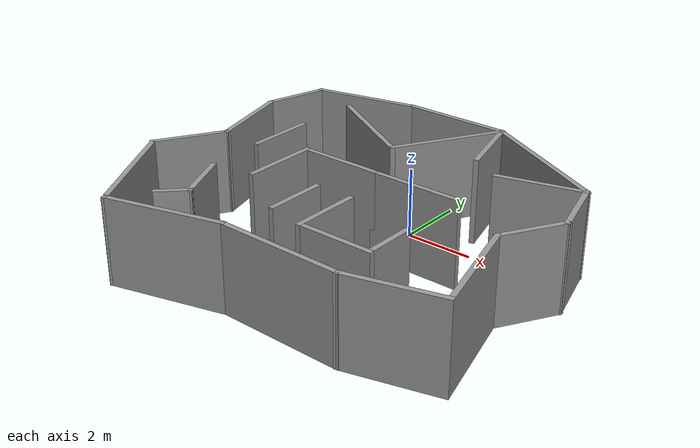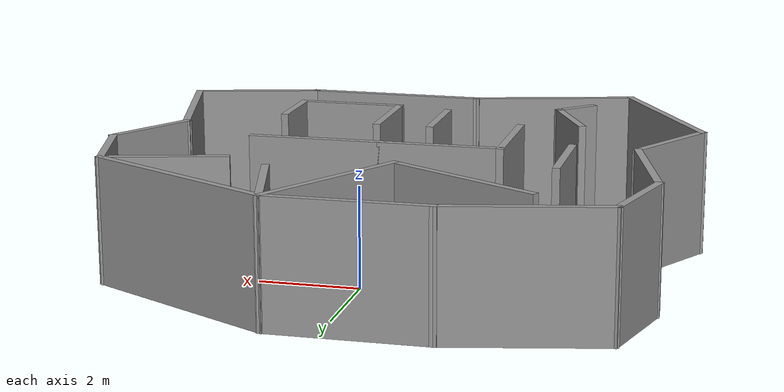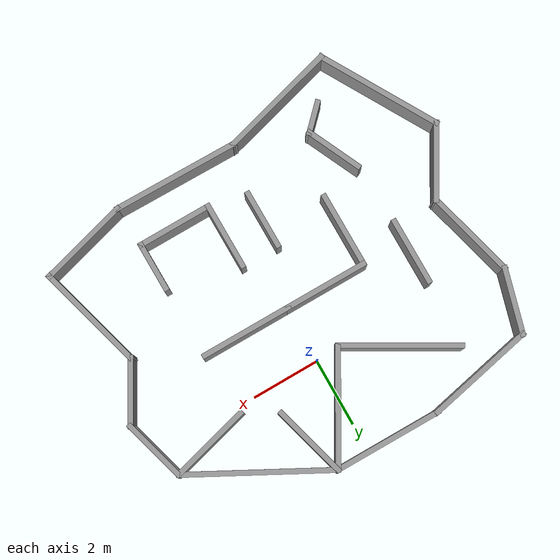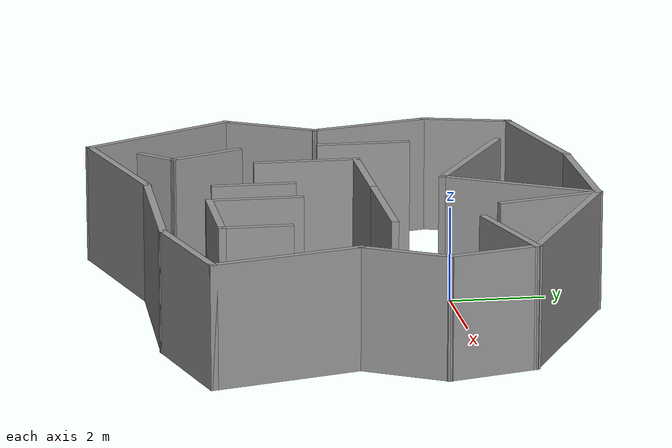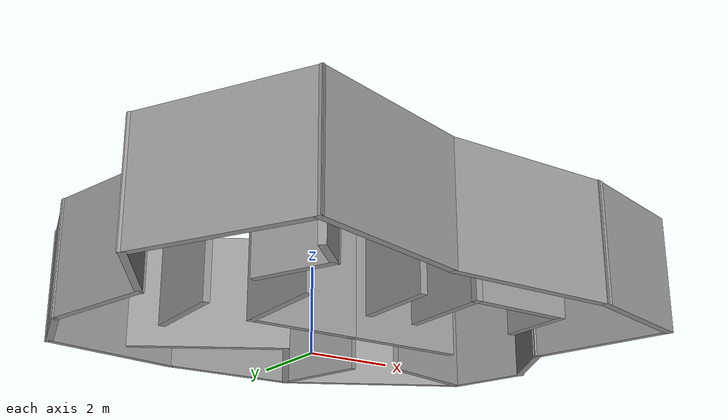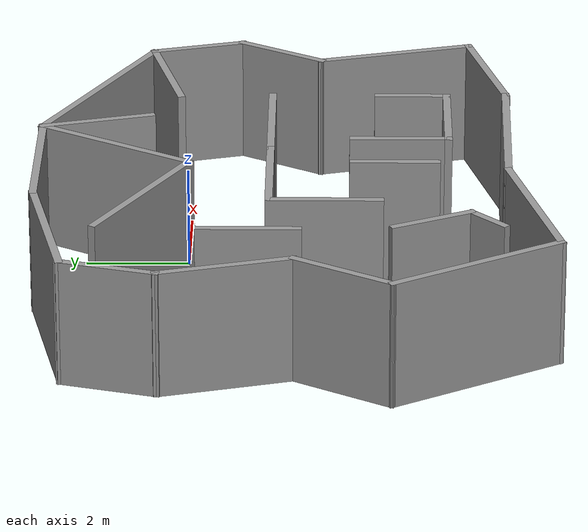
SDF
<?xml version='1.0'?>
<sdf version='1.7'>
  <model name='Test'>
    <pose>-0.352034 -2.08508 0 0 -0 0</pose>
    <link name='Wall_0'>
      <collision name='Wall_0_Collision'>
        <geometry>
          <box>
            <size>2.25 0.15 2.5</size>
          </box>
        </geometry>
        <pose>0 0 1.25 0 -0 0</pose>
      </collision>
      <visual name='Wall_0_Visual'>
        <pose>0 0 1.25 0 -0 0</pose>
        <geometry>
          <box>
            <size>2.25 0.15 2.5</size>
          </box>
        </geometry>
        <material>
          <script>
            <uri>file://media/materials/scripts/gazebo.material</uri>
            <name>Gazebo/Grey</name>
          </script>
          <ambient>1 1 1 1</ambient>
        </material>
        <meta>
          <layer>0</layer>
        </meta>
      </visual>
      <pose>-2.00797 -0.564918 0 0 -0 1.5708</pose>
    </link>
    <link name='Wall_1'>
      <collision name='Wall_1_Collision'>
        <geometry>
          <box>
            <size>2.5 0.15 2.5</size>
          </box>
        </geometry>
        <pose>0 0 1.25 0 -0 0</pose>
      </collision>
      <visual name='Wall_1_Visual'>
        <pose>0 0 1.25 0 -0 0</pose>
        <geometry>
          <box>
            <size>2.5 0.15 2.5</size>
          </box>
        </geometry>
        <material>
          <script>
            <uri>file://media/materials/scripts/gazebo.material</uri>
            <name>Gazebo/Grey</name>
          </script>
          <ambient>1 1 1 1</ambient>
        </material>
        <meta>
          <layer>0</layer>
        </meta>
      </visual>
      <pose>-0.832966 0.485082 0 0 -0 0</pose>
    </link>
    <link name='Wall_11'>
      <collision name='Wall_11_Collision'>
        <geometry>
          <box>
            <size>1.74995 0.15 2.5</size>
          </box>
        </geometry>
        <pose>0 0 1.25 0 -0 0</pose>
      </collision>
      <visual name='Wall_11_Visual'>
        <pose>0 0 1.25 0 -0 0</pose>
        <geometry>
          <box>
            <size>1.74995 0.15 2.5</size>
          </box>
        </geometry>
        <material>
          <script>
            <uri>file://media/materials/scripts/gazebo.material</uri>
            <name>Gazebo/Grey</name>
          </script>
          <ambient>1 1 1 1</ambient>
        </material>
        <meta>
          <layer>0</layer>
        </meta>
      </visual>
      <pose>-2.86793 -2.59903 0 0 -0 -1.13177</pose>
    </link>
    <link name='Wall_14'>
      <collision name='Wall_14_Collision'>
        <geometry>
          <box>
            <size>3.5 0.15 2.5</size>
          </box>
        </geometry>
        <pose>0 0 1.25 0 -0 0</pose>
      </collision>
      <visual name='Wall_14_Visual'>
        <pose>0 0 1.25 0 -0 0</pose>
        <geometry>
          <box>
            <size>3.5 0.15 2.5</size>
          </box>
        </geometry>
        <material>
          <script>
            <uri>file://media/materials/scripts/gazebo.material</uri>
            <name>Gazebo/Grey</name>
          </script>
          <ambient>1 1 1 1</ambient>
        </material>
        <meta>
          <layer>0</layer>
        </meta>
      </visual>
      <pose>-1.75737 2.88758 0 0 -0 -0.523599</pose>
    </link>
    <link name='Wall_15'>
      <collision name='Wall_15_Collision'>
        <geometry>
          <box>
            <size>3.5 0.15 2.5</size>
          </box>
        </geometry>
        <pose>0 0 1.25 0 -0 0</pose>
      </collision>
      <visual name='Wall_15_Visual'>
        <pose>0 0 1.25 0 -0 0</pose>
        <geometry>
          <box>
            <size>3.5 0.15 2.5</size>
          </box>
        </geometry>
        <material>
          <script>
            <uri>file://media/materials/scripts/gazebo.material</uri>
            <name>Gazebo/Grey</name>
          </script>
          <ambient>1 1 1 1</ambient>
        </material>
        <meta>
          <layer>0</layer>
        </meta>
      </visual>
      <pose>0.530719 3.50068 0 0 -0 1.0472</pose>
    </link>
    <link name='Wall_16'>
      <collision name='Wall_16_Collision'>
        <geometry>
          <box>
            <size>3.25 0.15 2.5</size>
          </box>
        </geometry>
        <pose>0 0 1.25 0 -0 0</pose>
      </collision>
      <visual name='Wall_16_Visual'>
        <pose>0 0 1.25 0 -0 0</pose>
        <geometry>
          <box>
            <size>3.25 0.15 2.5</size>
          </box>
        </geometry>
        <material>
          <script>
            <uri>file://media/materials/scripts/gazebo.material</uri>
            <name>Gazebo/Grey</name>
          </script>
          <ambient>1 1 1 1</ambient>
        </material>
        <meta>
          <layer>0</layer>
        </meta>
      </visual>
      <pose>-0.181781 4.95127 0 0 -0 3.14159</pose>
    </link>
    <link name='Wall_19'>
      <collision name='Wall_19_Collision'>
        <geometry>
          <box>
            <size>2.75 0.15 2.5</size>
          </box>
        </geometry>
        <pose>0 0 1.25 0 -0 0</pose>
      </collision>
      <visual name='Wall_19_Visual'>
        <pose>0 0 1.25 0 -0 0</pose>
        <geometry>
          <box>
            <size>2.75 0.15 2.5</size>
          </box>
        </geometry>
        <material>
          <script>
            <uri>file://media/materials/scripts/gazebo.material</uri>
            <name>Gazebo/Grey</name>
          </script>
          <ambient>1 1 1 1</ambient>
        </material>
        <meta>
          <layer>0</layer>
        </meta>
      </visual>
      <pose>4.2513 -3.80096 0 0 -0 0.261799</pose>
    </link>
    <link name='Wall_2'>
      <collision name='Wall_2_Collision'>
        <geometry>
          <box>
            <size>2.75 0.15 2.5</size>
          </box>
        </geometry>
        <pose>0 0 1.25 0 -0 0</pose>
      </collision>
      <visual name='Wall_2_Visual'>
        <pose>0 0 1.25 0 -0 0</pose>
        <geometry>
          <box>
            <size>2.75 0.15 2.5</size>
          </box>
        </geometry>
        <material>
          <script>
            <uri>file://media/materials/scripts/gazebo.material</uri>
            <name>Gazebo/Grey</name>
          </script>
          <ambient>1 1 1 1</ambient>
        </material>
        <meta>
          <layer>0</layer>
        </meta>
      </visual>
      <pose>1.64203 0.485082 0 0 -0 0</pose>
    </link>
    <link name='Wall_20'>
      <collision name='Wall_20_Collision'>
        <geometry>
          <box>
            <size>3.25 0.15 2.5</size>
          </box>
        </geometry>
        <pose>0 0 1.25 0 -0 0</pose>
      </collision>
      <visual name='Wall_20_Visual'>
        <pose>0 0 1.25 0 -0 0</pose>
        <geometry>
          <box>
            <size>3.25 0.15 2.5</size>
          </box>
        </geometry>
        <material>
          <script>
            <uri>file://media/materials/scripts/gazebo.material</uri>
            <name>Gazebo/Grey</name>
          </script>
          <ambient>1 1 1 1</ambient>
        </material>
        <meta>
          <layer>0</layer>
        </meta>
      </visual>
      <pose>5.10583 -1.96731 0 0 -0 1.8326</pose>
    </link>
    <link name='Wall_21'>
      <collision name='Wall_21_Collision'>
        <geometry>
          <box>
            <size>2 0.15 2.5</size>
          </box>
        </geometry>
        <pose>0 0 1.25 0 -0 0</pose>
      </collision>
      <visual name='Wall_21_Visual'>
        <pose>0 0 1.25 0 -0 0</pose>
        <geometry>
          <box>
            <size>2 0.15 2.5</size>
          </box>
        </geometry>
        <material>
          <script>
            <uri>file://media/materials/scripts/gazebo.material</uri>
            <name>Gazebo/Grey</name>
          </script>
          <ambient>1 1 1 1</ambient>
        </material>
        <meta>
          <layer>0</layer>
        </meta>
      </visual>
      <pose>5.16716 0.330949 0 0 -0 1.0472</pose>
    </link>
    <link name='Wall_22'>
      <collision name='Wall_22_Collision'>
        <geometry>
          <box>
            <size>2 0.15 2.5</size>
          </box>
        </geometry>
        <pose>0 0 1.25 0 -0 0</pose>
      </collision>
      <visual name='Wall_22_Visual'>
        <pose>0 0 1.25 0 -0 0</pose>
        <geometry>
          <box>
            <size>2 0.15 2.5</size>
          </box>
        </geometry>
        <material>
          <script>
            <uri>file://media/materials/scripts/gazebo.material</uri>
            <name>Gazebo/Grey</name>
          </script>
          <ambient>1 1 1 1</ambient>
        </material>
        <meta>
          <layer>0</layer>
        </meta>
      </visual>
      <pose>5.39025 2.0255 0 0 -0 1.8326</pose>
    </link>
    <link name='Wall_23'>
      <collision name='Wall_23_Collision'>
        <geometry>
          <box>
            <size>2.5 0.15 2.5</size>
          </box>
        </geometry>
        <pose>0 0 1.25 0 -0 0</pose>
      </collision>
      <visual name='Wall_23_Visual'>
        <pose>0 0 1.25 0 -0 0</pose>
        <geometry>
          <box>
            <size>2.5 0.15 2.5</size>
          </box>
        </geometry>
        <material>
          <script>
            <uri>file://media/materials/scripts/gazebo.material</uri>
            <name>Gazebo/Grey</name>
          </script>
          <ambient>1 1 1 1</ambient>
        </material>
        <meta>
          <layer>0</layer>
        </meta>
      </visual>
      <pose>4.01588 2.61487 0 0 -0 -2.87979</pose>
    </link>
    <link name='Wall_25'>
      <collision name='Wall_25_Collision'>
        <geometry>
          <box>
            <size>2.31423 0.15 2.5</size>
          </box>
        </geometry>
        <pose>0 0 1.25 0 -0 0</pose>
      </collision>
      <visual name='Wall_25_Visual'>
        <pose>0 0 1.25 0 -0 0</pose>
        <geometry>
          <box>
            <size>2.31423 0.15 2.5</size>
          </box>
        </geometry>
        <material>
          <script>
            <uri>file://media/materials/scripts/gazebo.material</uri>
            <name>Gazebo/Grey</name>
          </script>
          <ambient>1 1 1 1</ambient>
        </material>
        <meta>
          <layer>0</layer>
        </meta>
      </visual>
      <pose>1.64826 3.90601 0 0 -0 1.83256</pose>
    </link>
    <link name='Wall_27'>
      <collision name='Wall_27_Collision'>
        <geometry>
          <box>
            <size>1 0.15 2.5</size>
          </box>
        </geometry>
        <pose>0 0 1.25 0 -0 0</pose>
      </collision>
      <visual name='Wall_27_Visual'>
        <pose>0 0 1.25 0 -0 0</pose>
        <geometry>
          <box>
            <size>1 0.15 2.5</size>
          </box>
        </geometry>
        <material>
          <script>
            <uri>file://media/materials/scripts/gazebo.material</uri>
            <name>Gazebo/Grey</name>
          </script>
          <ambient>1 1 1 1</ambient>
        </material>
        <meta>
          <layer>0</layer>
        </meta>
      </visual>
      <pose>-2.82841 -3.62366 0 0 -0 -2.35619</pose>
    </link>
    <link name='Wall_29'>
      <collision name='Wall_29_Collision'>
        <geometry>
          <box>
            <size>3.5 0.15 2.5</size>
          </box>
        </geometry>
        <pose>0 0 1.25 0 -0 0</pose>
      </collision>
      <visual name='Wall_29_Visual'>
        <pose>0 0 1.25 0 -0 0</pose>
        <geometry>
          <box>
            <size>3.5 0.15 2.5</size>
          </box>
        </geometry>
        <material>
          <script>
            <uri>file://media/materials/scripts/gazebo.material</uri>
            <name>Gazebo/Grey</name>
          </script>
          <ambient>1 1 1 1</ambient>
        </material>
        <meta>
          <layer>0</layer>
        </meta>
      </visual>
      <pose>-2.21174 -4.51774 0 0 -0 -2.87979</pose>
    </link>
    <link name='Wall_30'>
      <collision name='Wall_30_Collision'>
        <geometry>
          <box>
            <size>3.75 0.15 2.5</size>
          </box>
        </geometry>
        <pose>0 0 1.25 0 -0 0</pose>
      </collision>
      <visual name='Wall_30_Visual'>
        <pose>0 0 1.25 0 -0 0</pose>
        <geometry>
          <box>
            <size>3.75 0.15 2.5</size>
          </box>
        </geometry>
        <material>
          <script>
            <uri>file://media/materials/scripts/gazebo.material</uri>
            <name>Gazebo/Grey</name>
          </script>
          <ambient>1 1 1 1</ambient>
        </material>
        <meta>
          <layer>0</layer>
        </meta>
      </visual>
      <pose>-4.72966 -3.39242 0 0 -0 2.0944</pose>
    </link>
    <link name='Wall_31'>
      <collision name='Wall_31_Collision'>
        <geometry>
          <box>
            <size>2.25 0.15 2.5</size>
          </box>
        </geometry>
        <pose>0 0 1.25 0 -0 0</pose>
      </collision>
      <visual name='Wall_31_Visual'>
        <pose>0 0 1.25 0 -0 0</pose>
        <geometry>
          <box>
            <size>2.25 0.15 2.5</size>
          </box>
        </geometry>
        <material>
          <script>
            <uri>file://media/materials/scripts/gazebo.material</uri>
            <name>Gazebo/Grey</name>
          </script>
          <ambient>1 1 1 1</ambient>
        </material>
        <meta>
          <layer>0</layer>
        </meta>
      </visual>
      <pose>-5.10466 -0.924249 0 0 -0 1.0472</pose>
    </link>
    <link name='Wall_32'>
      <collision name='Wall_32_Collision'>
        <geometry>
          <box>
            <size>2.75 0.15 2.5</size>
          </box>
        </geometry>
        <pose>0 0 1.25 0 -0 0</pose>
      </collision>
      <visual name='Wall_32_Visual'>
        <pose>0 0 1.25 0 -0 0</pose>
        <geometry>
          <box>
            <size>2.75 0.15 2.5</size>
          </box>
        </geometry>
        <material>
          <script>
            <uri>file://media/materials/scripts/gazebo.material</uri>
            <name>Gazebo/Grey</name>
          </script>
          <ambient>1 1 1 1</ambient>
        </material>
        <meta>
          <layer>0</layer>
        </meta>
      </visual>
      <pose>-4.91613 1.24078 0 0 -0 1.8326</pose>
    </link>
    <link name='Wall_33'>
      <collision name='Wall_33_Collision'>
        <geometry>
          <box>
            <size>2 0.15 2.5</size>
          </box>
        </geometry>
        <pose>0 0 1.25 0 -0 0</pose>
      </collision>
      <visual name='Wall_33_Visual'>
        <pose>0 0 1.25 0 -0 0</pose>
        <geometry>
          <box>
            <size>2 0.15 2.5</size>
          </box>
        </geometry>
        <material>
          <script>
            <uri>file://media/materials/scripts/gazebo.material</uri>
            <name>Gazebo/Grey</name>
          </script>
          <ambient>1 1 1 1</ambient>
        </material>
        <meta>
          <layer>0</layer>
        </meta>
      </visual>
      <pose>-5.01318 3.38997 0 0 -0 1.309</pose>
    </link>
    <link name='Wall_34'>
      <collision name='Wall_34_Collision'>
        <geometry>
          <box>
            <size>3.26444 0.15 2.5</size>
          </box>
        </geometry>
        <pose>0 0 1.25 0 -0 0</pose>
      </collision>
      <visual name='Wall_34_Visual'>
        <pose>0 0 1.25 0 -0 0</pose>
        <geometry>
          <box>
            <size>3.26444 0.15 2.5</size>
          </box>
        </geometry>
        <material>
          <script>
            <uri>file://media/materials/scripts/gazebo.material</uri>
            <name>Gazebo/Grey</name>
          </script>
          <ambient>1 1 1 1</ambient>
        </material>
        <meta>
          <layer>0</layer>
        </meta>
      </visual>
      <pose>-3.25278 4.61736 0 0 -0 0.216105</pose>
    </link>
    <link name='Wall_36'>
      <collision name='Wall_36_Collision'>
        <geometry>
          <box>
            <size>2 0.15 2.5</size>
          </box>
        </geometry>
        <pose>0 0 1.25 0 -0 0</pose>
      </collision>
      <visual name='Wall_36_Visual'>
        <pose>0 0 1.25 0 -0 0</pose>
        <geometry>
          <box>
            <size>2 0.15 2.5</size>
          </box>
        </geometry>
        <material>
          <script>
            <uri>file://media/materials/scripts/gazebo.material</uri>
            <name>Gazebo/Grey</name>
          </script>
          <ambient>1 1 1 1</ambient>
        </material>
        <meta>
          <layer>0</layer>
        </meta>
      </visual>
      <pose>-3.30703 0.84282 0 0 -0 -1.5708</pose>
    </link>
    <link name='Wall_38'>
      <collision name='Wall_38_Collision'>
        <geometry>
          <box>
            <size>4.444 0.15 2.5</size>
          </box>
        </geometry>
        <pose>0 0 1.25 0 -0 0</pose>
      </collision>
      <visual name='Wall_38_Visual'>
        <pose>0 0 1.25 0 -0 0</pose>
        <geometry>
          <box>
            <size>4.444 0.15 2.5</size>
          </box>
        </geometry>
        <material>
          <script>
            <uri>file://media/materials/scripts/gazebo.material</uri>
            <name>Gazebo/Grey</name>
          </script>
          <ambient>1 1 1 1</ambient>
        </material>
        <meta>
          <layer>0</layer>
        </meta>
      </visual>
      <pose>3.25953 3.93513 0 0 -0 -0.493015</pose>
    </link>
    <link name='Wall_4'>
      <collision name='Wall_4_Collision'>
        <geometry>
          <box>
            <size>1.5 0.15 2.5</size>
          </box>
        </geometry>
        <pose>0 0 1.25 0 -0 0</pose>
      </collision>
      <visual name='Wall_4_Visual'>
        <pose>0 0 1.25 0 -0 0</pose>
        <geometry>
          <box>
            <size>1.5 0.15 2.5</size>
          </box>
        </geometry>
        <material>
          <script>
            <uri>file://media/materials/scripts/gazebo.material</uri>
            <name>Gazebo/Grey</name>
          </script>
          <ambient>1 1 1 1</ambient>
        </material>
        <meta>
          <layer>0</layer>
        </meta>
      </visual>
      <pose>2.94203 -2.28992 0 0 -0 -1.5708</pose>
    </link>
    <link name='Wall_42'>
      <collision name='Wall_42_Collision'>
        <geometry>
          <box>
            <size>3.7398 0.15 2.5</size>
          </box>
        </geometry>
        <pose>0 0 1.25 0 -0 0</pose>
      </collision>
      <visual name='Wall_42_Visual'>
        <pose>0 0 1.25 0 -0 0</pose>
        <geometry>
          <box>
            <size>3.7398 0.15 2.5</size>
          </box>
        </geometry>
        <material>
          <script>
            <uri>file://media/materials/scripts/gazebo.material</uri>
            <name>Gazebo/Grey</name>
          </script>
          <ambient>1 1 1 1</ambient>
        </material>
        <meta>
          <layer>0</layer>
        </meta>
      </visual>
      <pose>1.20089 -4.11082 0 0 -0 -0.01482</pose>
    </link>
    <link name='Wall_5'>
      <collision name='Wall_5_Collision'>
        <geometry>
          <box>
            <size>2.25 0.15 2.5</size>
          </box>
        </geometry>
        <pose>0 0 1.25 0 -0 0</pose>
      </collision>
      <visual name='Wall_5_Visual'>
        <pose>0 0 1.25 0 -0 0</pose>
        <geometry>
          <box>
            <size>2.25 0.15 2.5</size>
          </box>
        </geometry>
        <material>
          <script>
            <uri>file://media/materials/scripts/gazebo.material</uri>
            <name>Gazebo/Grey</name>
          </script>
          <ambient>1 1 1 1</ambient>
        </material>
        <meta>
          <layer>0</layer>
        </meta>
      </visual>
      <pose>1.89203 -2.96492 0 0 -0 3.14159</pose>
    </link>
    <link name='Wall_6'>
      <collision name='Wall_6_Collision'>
        <geometry>
          <box>
            <size>2 0.15 2.5</size>
          </box>
        </geometry>
        <pose>0 0 1.25 0 -0 0</pose>
      </collision>
      <visual name='Wall_6_Visual'>
        <pose>0 0 1.25 0 -0 0</pose>
        <geometry>
          <box>
            <size>2 0.15 2.5</size>
          </box>
        </geometry>
        <material>
          <script>
            <uri>file://media/materials/scripts/gazebo.material</uri>
            <name>Gazebo/Grey</name>
          </script>
          <ambient>1 1 1 1</ambient>
        </material>
        <meta>
          <layer>0</layer>
        </meta>
      </visual>
      <pose>0.842034 -2.03992 0 0 -0 1.5708</pose>
    </link>
    <link name='Wall_8'>
      <collision name='Wall_8_Collision'>
        <geometry>
          <box>
            <size>1.75 0.15 2.5</size>
          </box>
        </geometry>
        <pose>0 0 1.25 0 -0 0</pose>
      </collision>
      <visual name='Wall_8_Visual'>
        <pose>0 0 1.25 0 -0 0</pose>
        <geometry>
          <box>
            <size>1.75 0.15 2.5</size>
          </box>
        </geometry>
        <material>
          <script>
            <uri>file://media/materials/scripts/gazebo.material</uri>
            <name>Gazebo/Grey</name>
          </script>
          <ambient>1 1 1 1</ambient>
        </material>
        <meta>
          <layer>0</layer>
        </meta>
      </visual>
      <pose>-0.257966 -1.91492 0 0 -0 -1.5708</pose>
    </link>
    <static>1</static>
  </model>
</sdf>
